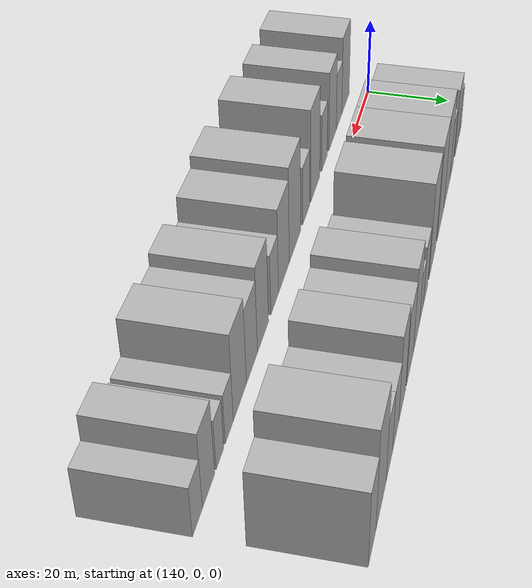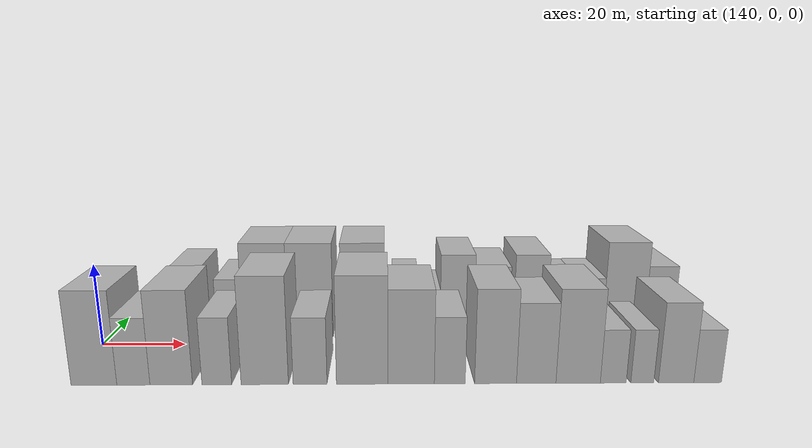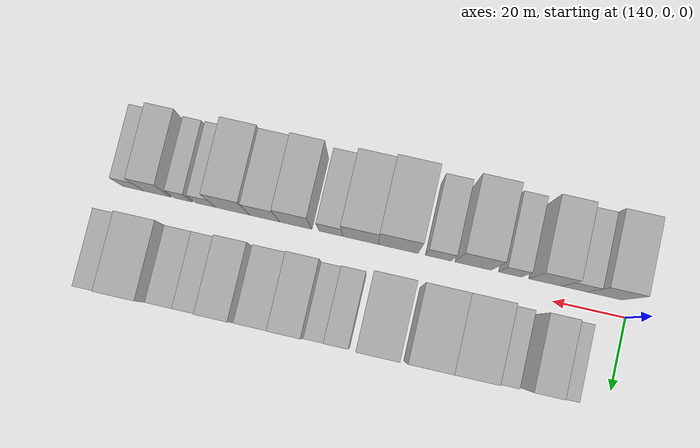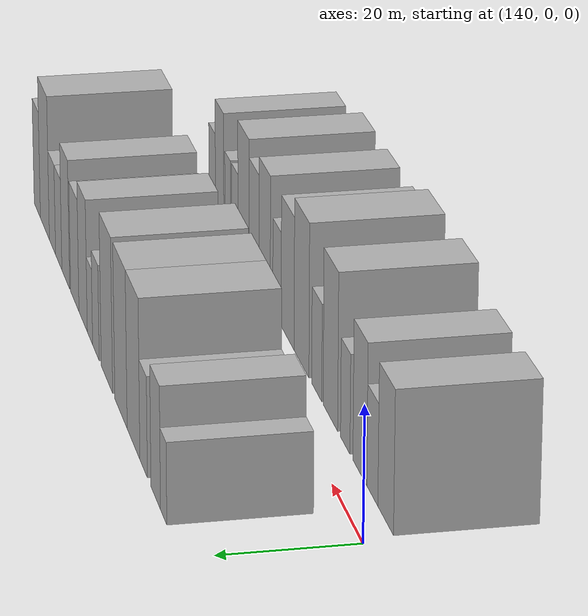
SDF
<sdf version="1.6">
 <world name="default">
  <model name="building_16">
   <static>1</static>
   <pose>153.3948 14.5000 0 0.000000 0.000000 1.570796</pose>
   <link name="link">
    <pose>0 0 6.00 0 0 0</pose>
    <collision name="collision"><geometry><box><size>20.0000 5.1076 12.0000</size></box></geometry></collision>
    <visual name="visual">
     <cast_shadows>0</cast_shadows>
     <geometry><box><size>20.0000 5.1076 12.0000</size></box></geometry>
     <material>
      <script>
       <uri>model://HANNAS_wall/materials/scripts</uri>
       <uri>model://HANNAS_wall/materials/textures</uri>
       <name>vrc/HANNAS_wall</name>
      </script>
     </material>
    </visual>
   </link>
  </model>
  <model name="building_17">
   <static>1</static>
   <pose>159.8865 14.5000 0 0.000000 0.000000 1.570796</pose>
   <link name="link">
    <pose>0 0 9.00 0 0 0</pose>
    <collision name="collision"><geometry><box><size>20.0000 7.8758 18.0000</size></box></geometry></collision>
    <visual name="visual">
     <cast_shadows>0</cast_shadows>
     <geometry><box><size>20.0000 7.8758 18.0000</size></box></geometry>
     <material>
      <script>
       <uri>model://HANNAS_wall/materials/scripts</uri>
       <uri>model://HANNAS_wall/materials/textures</uri>
       <name>vrc/HANNAS_wall</name>
      </script>
     </material>
    </visual>
   </link>
  </model>
  <model name="building_18">
   <static>1</static>
   <pose>170.0318 14.5000 0 0.000000 0.000000 1.570796</pose>
   <link name="link">
    <pose>0 0 7.50 0 0 0</pose>
    <collision name="collision"><geometry><box><size>20.0000 6.4147 15.0000</size></box></geometry></collision>
    <visual name="visual">
     <cast_shadows>0</cast_shadows>
     <geometry><box><size>20.0000 6.4147 15.0000</size></box></geometry>
     <material>
      <script>
       <uri>model://HANNAS_wall/materials/scripts</uri>
       <uri>model://HANNAS_wall/materials/textures</uri>
       <name>vrc/HANNAS_wall</name>
      </script>
     </material>
    </visual>
   </link>
  </model>
  <model name="building_19">
   <static>1</static>
   <pose>178.8279 14.5000 0 0.000000 0.000000 1.570796</pose>
   <link name="link">
    <pose>0 0 12.00 0 0 0</pose>
    <collision name="collision"><geometry><box><size>20.0000 11.1776 24.0000</size></box></geometry></collision>
    <visual name="visual">
     <cast_shadows>0</cast_shadows>
     <geometry><box><size>20.0000 11.1776 24.0000</size></box></geometry>
     <material>
      <script>
       <uri>model://HANNAS_wall/materials/scripts</uri>
       <uri>model://HANNAS_wall/materials/textures</uri>
       <name>vrc/HANNAS_wall</name>
      </script>
     </material>
    </visual>
   </link>
  </model>
  <model name="building_20">
   <static>1</static>
   <pose>190.0567 14.5000 0 0.000000 0.000000 1.570796</pose>
   <link name="link">
    <pose>0 0 12.00 0 0 0</pose>
    <collision name="collision"><geometry><box><size>20.0000 11.2800 24.0000</size></box></geometry></collision>
    <visual name="visual">
     <cast_shadows>0</cast_shadows>
     <geometry><box><size>20.0000 11.2800 24.0000</size></box></geometry>
     <material>
      <script>
       <uri>model://HANNAS_wall/materials/scripts</uri>
       <uri>model://HANNAS_wall/materials/textures</uri>
       <name>vrc/HANNAS_wall</name>
      </script>
     </material>
    </visual>
   </link>
  </model>
  <model name="building_21">
   <static>1</static>
   <pose>203.1118 14.5000 0 0.000000 0.000000 1.570796</pose>
   <link name="link">
    <pose>0 0 12.00 0 0 0</pose>
    <collision name="collision"><geometry><box><size>20.0000 10.8301 24.0000</size></box></geometry></collision>
    <visual name="visual">
     <cast_shadows>0</cast_shadows>
     <geometry><box><size>20.0000 10.8301 24.0000</size></box></geometry>
     <material>
      <script>
       <uri>model://HANNAS_wall/materials/scripts</uri>
       <uri>model://HANNAS_wall/materials/textures</uri>
       <name>vrc/HANNAS_wall</name>
      </script>
     </material>
    </visual>
   </link>
  </model>
  <model name="building_22">
   <static>1</static>
   <pose>213.7627 14.5000 0 0.000000 0.000000 1.570796</pose>
   <link name="link">
    <pose>0 0 7.50 0 0 0</pose>
    <collision name="collision"><geometry><box><size>20.0000 6.4716 15.0000</size></box></geometry></collision>
    <visual name="visual">
     <cast_shadows>0</cast_shadows>
     <geometry><box><size>20.0000 6.4716 15.0000</size></box></geometry>
     <material>
      <script>
       <uri>model://HANNAS_wall/materials/scripts</uri>
       <uri>model://HANNAS_wall/materials/textures</uri>
       <name>vrc/HANNAS_wall</name>
      </script>
     </material>
    </visual>
   </link>
  </model>
  <model name="building_23">
   <static>1</static>
   <pose>219.6627 14.5000 0 0.000000 0.000000 1.570796</pose>
   <link name="link">
    <pose>0 0 6.00 0 0 0</pose>
    <collision name="collision"><geometry><box><size>20.0000 5.3285 12.0000</size></box></geometry></collision>
    <visual name="visual">
     <cast_shadows>0</cast_shadows>
     <geometry><box><size>20.0000 5.3285 12.0000</size></box></geometry>
     <material>
      <script>
       <uri>model://HANNAS_wall/materials/scripts</uri>
       <uri>model://HANNAS_wall/materials/textures</uri>
       <name>vrc/HANNAS_wall</name>
      </script>
     </material>
    </visual>
   </link>
  </model>
  <model name="building_24">
   <static>1</static>
   <pose>226.5750 14.5000 0 0.000000 0.000000 1.570796</pose>
   <link name="link">
    <pose>0 0 10.50 0 0 0</pose>
    <collision name="collision"><geometry><box><size>20.0000 8.4960 21.0000</size></box></geometry></collision>
    <visual name="visual">
     <cast_shadows>0</cast_shadows>
     <geometry><box><size>20.0000 8.4960 21.0000</size></box></geometry>
     <material>
      <script>
       <uri>model://HANNAS_wall/materials/scripts</uri>
       <uri>model://HANNAS_wall/materials/textures</uri>
       <name>vrc/HANNAS_wall</name>
      </script>
     </material>
    </visual>
   </link>
  </model>
  <model name="building_25">
   <static>1</static>
   <pose>235.1935 14.5000 0 0.000000 0.000000 1.570796</pose>
   <link name="link">
    <pose>0 0 9.00 0 0 0</pose>
    <collision name="collision"><geometry><box><size>20.0000 8.7410 18.0000</size></box></geometry></collision>
    <visual name="visual">
     <cast_shadows>0</cast_shadows>
     <geometry><box><size>20.0000 8.7410 18.0000</size></box></geometry>
     <material>
      <script>
       <uri>model://HANNAS_wall/materials/scripts</uri>
       <uri>model://HANNAS_wall/materials/textures</uri>
       <name>vrc/HANNAS_wall</name>
      </script>
     </material>
    </visual>
   </link>
  </model>
  <model name="building_26">
   <static>1</static>
   <pose>244.7764 14.5000 0 0.000000 0.000000 1.570796</pose>
   <link name="link">
    <pose>0 0 10.50 0 0 0</pose>
    <collision name="collision"><geometry><box><size>20.0000 8.4247 21.0000</size></box></geometry></collision>
    <visual name="visual">
     <cast_shadows>0</cast_shadows>
     <geometry><box><size>20.0000 8.4247 21.0000</size></box></geometry>
     <material>
      <script>
       <uri>model://HANNAS_wall/materials/scripts</uri>
       <uri>model://HANNAS_wall/materials/textures</uri>
       <name>vrc/HANNAS_wall</name>
      </script>
     </material>
    </visual>
   </link>
  </model>
  <model name="building_27">
   <static>1</static>
   <pose>252.4728 14.5000 0 0.000000 0.000000 1.570796</pose>
   <link name="link">
    <pose>0 0 7.50 0 0 0</pose>
    <collision name="collision"><geometry><box><size>20.0000 6.9681 15.0000</size></box></geometry></collision>
    <visual name="visual">
     <cast_shadows>0</cast_shadows>
     <geometry><box><size>20.0000 6.9681 15.0000</size></box></geometry>
     <material>
      <script>
       <uri>model://HANNAS_wall/materials/scripts</uri>
       <uri>model://HANNAS_wall/materials/textures</uri>
       <name>vrc/HANNAS_wall</name>
      </script>
     </material>
    </visual>
   </link>
  </model>
  <model name="building_28">
   <static>1</static>
   <pose>259.4414 14.5000 0 0.000000 0.000000 1.570796</pose>
   <link name="link">
    <pose>0 0 7.50 0 0 0</pose>
    <collision name="collision"><geometry><box><size>20.0000 6.9691 15.0000</size></box></geometry></collision>
    <visual name="visual">
     <cast_shadows>0</cast_shadows>
     <geometry><box><size>20.0000 6.9691 15.0000</size></box></geometry>
     <material>
      <script>
       <uri>model://HANNAS_wall/materials/scripts</uri>
       <uri>model://HANNAS_wall/materials/textures</uri>
       <name>vrc/HANNAS_wall</name>
      </script>
     </material>
    </visual>
   </link>
  </model>
  <model name="building_29">
   <static>1</static>
   <pose>268.1267 14.5000 0 0.000000 0.000000 1.570796</pose>
   <link name="link">
    <pose>0 0 12.00 0 0 0</pose>
    <collision name="collision"><geometry><box><size>20.0000 10.4015 24.0000</size></box></geometry></collision>
    <visual name="visual">
     <cast_shadows>0</cast_shadows>
     <geometry><box><size>20.0000 10.4015 24.0000</size></box></geometry>
     <material>
      <script>
       <uri>model://HANNAS_wall/materials/scripts</uri>
       <uri>model://HANNAS_wall/materials/textures</uri>
       <name>vrc/HANNAS_wall</name>
      </script>
     </material>
    </visual>
   </link>
  </model>
  <model name="building_30">
   <static>1</static>
   <pose>276.9671 14.5000 0 0.000000 0.000000 1.570796</pose>
   <link name="link">
    <pose>0 0 9.00 0 0 0</pose>
    <collision name="collision"><geometry><box><size>20.0000 7.2794 18.0000</size></box></geometry></collision>
    <visual name="visual">
     <cast_shadows>0</cast_shadows>
     <geometry><box><size>20.0000 7.2794 18.0000</size></box></geometry>
     <material>
      <script>
       <uri>model://HANNAS_wall/materials/scripts</uri>
       <uri>model://HANNAS_wall/materials/textures</uri>
       <name>vrc/HANNAS_wall</name>
      </script>
     </material>
    </visual>
   </link>
  </model>
  <model name="building_44">
   <static>1</static>
   <pose>146.6726 -14.5000 0 0.000000 0.000000 1.570796</pose>
   <link name="link">
    <pose>0 0 10.50 0 0 0</pose>
    <collision name="collision"><geometry><box><size>20.0000 9.6996 21.0000</size></box></geometry></collision>
    <visual name="visual">
     <cast_shadows>0</cast_shadows>
     <geometry><box><size>20.0000 9.6996 21.0000</size></box></geometry>
     <material>
      <script>
       <uri>model://HANNAS_wall/materials/scripts</uri>
       <uri>model://HANNAS_wall/materials/textures</uri>
       <name>vrc/HANNAS_wall</name>
      </script>
     </material>
    </visual>
   </link>
  </model>
  <model name="building_45">
   <static>1</static>
   <pose>155.0358 -14.5000 0 0.000000 0.000000 1.570796</pose>
   <link name="link">
    <pose>0 0 7.50 0 0 0</pose>
    <collision name="collision"><geometry><box><size>20.0000 7.0267 15.0000</size></box></geometry></collision>
    <visual name="visual">
     <cast_shadows>0</cast_shadows>
     <geometry><box><size>20.0000 7.0267 15.0000</size></box></geometry>
     <material>
      <script>
       <uri>model://HANNAS_wall/materials/scripts</uri>
       <uri>model://HANNAS_wall/materials/textures</uri>
       <name>vrc/HANNAS_wall</name>
      </script>
     </material>
    </visual>
   </link>
  </model>
  <model name="building_46">
   <static>1</static>
   <pose>163.0676 -14.5000 0 0.000000 0.000000 1.570796</pose>
   <link name="link">
    <pose>0 0 10.50 0 0 0</pose>
    <collision name="collision"><geometry><box><size>20.0000 9.0370 21.0000</size></box></geometry></collision>
    <visual name="visual">
     <cast_shadows>0</cast_shadows>
     <geometry><box><size>20.0000 9.0370 21.0000</size></box></geometry>
     <material>
      <script>
       <uri>model://HANNAS_wall/materials/scripts</uri>
       <uri>model://HANNAS_wall/materials/textures</uri>
       <name>vrc/HANNAS_wall</name>
      </script>
     </material>
    </visual>
   </link>
  </model>
  <model name="building_47">
   <static>1</static>
   <pose>172.7438 -14.5000 0 0.000000 0.000000 1.570796</pose>
   <link name="link">
    <pose>0 0 7.50 0 0 0</pose>
    <collision name="collision"><geometry><box><size>20.0000 6.3155 15.0000</size></box></geometry></collision>
    <visual name="visual">
     <cast_shadows>0</cast_shadows>
     <geometry><box><size>20.0000 6.3155 15.0000</size></box></geometry>
     <material>
      <script>
       <uri>model://HANNAS_wall/materials/scripts</uri>
       <uri>model://HANNAS_wall/materials/textures</uri>
       <name>vrc/HANNAS_wall</name>
      </script>
     </material>
    </visual>
   </link>
  </model>
  <model name="building_48">
   <static>1</static>
   <pose>182.9381 -14.5000 0 0.000000 0.000000 1.570796</pose>
   <link name="link">
    <pose>0 0 12.00 0 0 0</pose>
    <collision name="collision"><geometry><box><size>20.0000 10.0730 24.0000</size></box></geometry></collision>
    <visual name="visual">
     <cast_shadows>0</cast_shadows>
     <geometry><box><size>20.0000 10.0730 24.0000</size></box></geometry>
     <material>
      <script>
       <uri>model://HANNAS_wall/materials/scripts</uri>
       <uri>model://HANNAS_wall/materials/textures</uri>
       <name>vrc/HANNAS_wall</name>
      </script>
     </material>
    </visual>
   </link>
  </model>
  <model name="building_49">
   <static>1</static>
   <pose>192.5870 -14.5000 0 0.000000 0.000000 1.570796</pose>
   <link name="link">
    <pose>0 0 7.50 0 0 0</pose>
    <collision name="collision"><geometry><box><size>20.0000 7.2249 15.0000</size></box></geometry></collision>
    <visual name="visual">
     <cast_shadows>0</cast_shadows>
     <geometry><box><size>20.0000 7.2249 15.0000</size></box></geometry>
     <material>
      <script>
       <uri>model://HANNAS_wall/materials/scripts</uri>
       <uri>model://HANNAS_wall/materials/textures</uri>
       <name>vrc/HANNAS_wall</name>
      </script>
     </material>
    </visual>
   </link>
  </model>
  <model name="building_50">
   <static>1</static>
   <pose>203.7016 -14.5000 0 0.000000 0.000000 1.570796</pose>
   <link name="link">
    <pose>0 0 12.00 0 0 0</pose>
    <collision name="collision"><geometry><box><size>20.0000 11.0044 24.0000</size></box></geometry></collision>
    <visual name="visual">
     <cast_shadows>0</cast_shadows>
     <geometry><box><size>20.0000 11.0044 24.0000</size></box></geometry>
     <material>
      <script>
       <uri>model://HANNAS_wall/materials/scripts</uri>
       <uri>model://HANNAS_wall/materials/textures</uri>
       <name>vrc/HANNAS_wall</name>
      </script>
     </material>
    </visual>
   </link>
  </model>
  <model name="building_51">
   <static>1</static>
   <pose>214.1543 -14.5000 0 0.000000 0.000000 1.570796</pose>
   <link name="link">
    <pose>0 0 10.50 0 0 0</pose>
    <collision name="collision"><geometry><box><size>20.0000 9.9009 21.0000</size></box></geometry></collision>
    <visual name="visual">
     <cast_shadows>0</cast_shadows>
     <geometry><box><size>20.0000 9.9009 21.0000</size></box></geometry>
     <material>
      <script>
       <uri>model://HANNAS_wall/materials/scripts</uri>
       <uri>model://HANNAS_wall/materials/textures</uri>
       <name>vrc/HANNAS_wall</name>
      </script>
     </material>
    </visual>
   </link>
  </model>
  <model name="building_52">
   <static>1</static>
   <pose>222.4095 -14.5000 0 0.000000 0.000000 1.570796</pose>
   <link name="link">
    <pose>0 0 7.50 0 0 0</pose>
    <collision name="collision"><geometry><box><size>20.0000 6.6095 15.0000</size></box></geometry></collision>
    <visual name="visual">
     <cast_shadows>0</cast_shadows>
     <geometry><box><size>20.0000 6.6095 15.0000</size></box></geometry>
     <material>
      <script>
       <uri>model://HANNAS_wall/materials/scripts</uri>
       <uri>model://HANNAS_wall/materials/textures</uri>
       <name>vrc/HANNAS_wall</name>
      </script>
     </material>
    </visual>
   </link>
  </model>
  <model name="building_53">
   <static>1</static>
   <pose>232.1975 -14.5000 0 0.000000 0.000000 1.570796</pose>
   <link name="link">
    <pose>0 0 10.50 0 0 0</pose>
    <collision name="collision"><geometry><box><size>20.0000 8.9667 21.0000</size></box></geometry></collision>
    <visual name="visual">
     <cast_shadows>0</cast_shadows>
     <geometry><box><size>20.0000 8.9667 21.0000</size></box></geometry>
     <material>
      <script>
       <uri>model://HANNAS_wall/materials/scripts</uri>
       <uri>model://HANNAS_wall/materials/textures</uri>
       <name>vrc/HANNAS_wall</name>
      </script>
     </material>
    </visual>
   </link>
  </model>
  <model name="building_54">
   <static>1</static>
   <pose>240.9130 -14.5000 0 0.000000 0.000000 1.570796</pose>
   <link name="link">
    <pose>0 0 9.00 0 0 0</pose>
    <collision name="collision"><geometry><box><size>20.0000 8.4643 18.0000</size></box></geometry></collision>
    <visual name="visual">
     <cast_shadows>0</cast_shadows>
     <geometry><box><size>20.0000 8.4643 18.0000</size></box></geometry>
     <material>
      <script>
       <uri>model://HANNAS_wall/materials/scripts</uri>
       <uri>model://HANNAS_wall/materials/textures</uri>
       <name>vrc/HANNAS_wall</name>
      </script>
     </material>
    </visual>
   </link>
  </model>
  <model name="building_55">
   <static>1</static>
   <pose>249.9056 -14.5000 0 0.000000 0.000000 1.570796</pose>
   <link name="link">
    <pose>0 0 10.50 0 0 0</pose>
    <collision name="collision"><geometry><box><size>20.0000 9.5208 21.0000</size></box></geometry></collision>
    <visual name="visual">
     <cast_shadows>0</cast_shadows>
     <geometry><box><size>20.0000 9.5208 21.0000</size></box></geometry>
     <material>
      <script>
       <uri>model://HANNAS_wall/materials/scripts</uri>
       <uri>model://HANNAS_wall/materials/textures</uri>
       <name>vrc/HANNAS_wall</name>
      </script>
     </material>
    </visual>
   </link>
  </model>
  <model name="building_56">
   <static>1</static>
   <pose>257.4440 -14.5000 0 0.000000 0.000000 1.570796</pose>
   <link name="link">
    <pose>0 0 6.00 0 0 0</pose>
    <collision name="collision"><geometry><box><size>20.0000 5.5560 12.0000</size></box></geometry></collision>
    <visual name="visual">
     <cast_shadows>0</cast_shadows>
     <geometry><box><size>20.0000 5.5560 12.0000</size></box></geometry>
     <material>
      <script>
       <uri>model://HANNAS_wall/materials/scripts</uri>
       <uri>model://HANNAS_wall/materials/textures</uri>
       <name>vrc/HANNAS_wall</name>
      </script>
     </material>
    </visual>
   </link>
  </model>
  <model name="building_57">
   <static>1</static>
   <pose>263.6891 -14.5000 0 0.000000 0.000000 1.570796</pose>
   <link name="link">
    <pose>0 0 6.00 0 0 0</pose>
    <collision name="collision"><geometry><box><size>20.0000 4.9343 12.0000</size></box></geometry></collision>
    <visual name="visual">
     <cast_shadows>0</cast_shadows>
     <geometry><box><size>20.0000 4.9343 12.0000</size></box></geometry>
     <material>
      <script>
       <uri>model://HANNAS_wall/materials/scripts</uri>
       <uri>model://HANNAS_wall/materials/textures</uri>
       <name>vrc/HANNAS_wall</name>
      </script>
     </material>
    </visual>
   </link>
  </model>
  <model name="building_58">
   <static>1</static>
   <pose>270.9557 -14.5000 0 0.000000 0.000000 1.570796</pose>
   <link name="link">
    <pose>0 0 9.00 0 0 0</pose>
    <collision name="collision"><geometry><box><size>20.0000 7.5988 18.0000</size></box></geometry></collision>
    <visual name="visual">
     <cast_shadows>0</cast_shadows>
     <geometry><box><size>20.0000 7.5988 18.0000</size></box></geometry>
     <material>
      <script>
       <uri>model://HANNAS_wall/materials/scripts</uri>
       <uri>model://HANNAS_wall/materials/textures</uri>
       <name>vrc/HANNAS_wall</name>
      </script>
     </material>
    </visual>
   </link>
  </model>
  <model name="building_59">
   <static>1</static>
   <pose>277.7350 -14.5000 0 0.000000 0.000000 1.570796</pose>
   <link name="link">
    <pose>0 0 6.00 0 0 0</pose>
    <collision name="collision"><geometry><box><size>20.0000 5.9599 12.0000</size></box></geometry></collision>
    <visual name="visual">
     <cast_shadows>0</cast_shadows>
     <geometry><box><size>20.0000 5.9599 12.0000</size></box></geometry>
     <material>
      <script>
       <uri>model://HANNAS_wall/materials/scripts</uri>
       <uri>model://HANNAS_wall/materials/textures</uri>
       <name>vrc/HANNAS_wall</name>
      </script>
     </material>
    </visual>
   </link>
  </model>
 </world>
</sdf>
